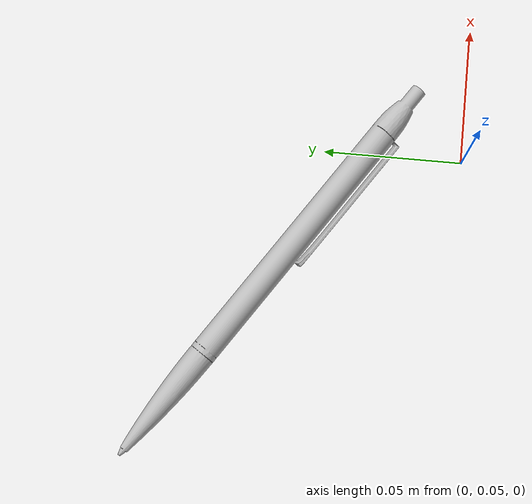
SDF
<?xml version='1.0'?>
<sdf version="1.4">
<model name="ball_pen">
  <pose>0 0 0  0 0 0</pose>
  <static>true</static>
    <link name="link">

      <collision name="collision">
        <geometry>
          <mesh><uri>model://ball_pen/meshes/ball_pen.dae</uri></mesh>
        </geometry>
      </collision>

      <visual name="visual">
        <geometry>
          <mesh><uri>model://ball_pen/meshes/ball_pen.dae</uri></mesh>
        </geometry>

        <material>
          <script>
            <uri>model://ball_pen/materials/scripts</uri>
            <uri>model://ball_pen/materials/textures</uri>
            <name>BallPen/Diffuse</name>
          </script>
        </material>

      </visual>
    </link>
  </model>
</sdf>
